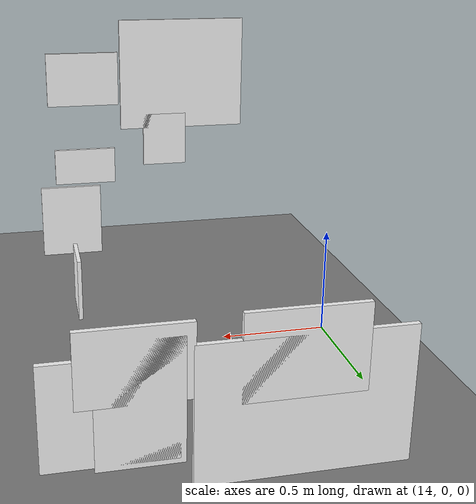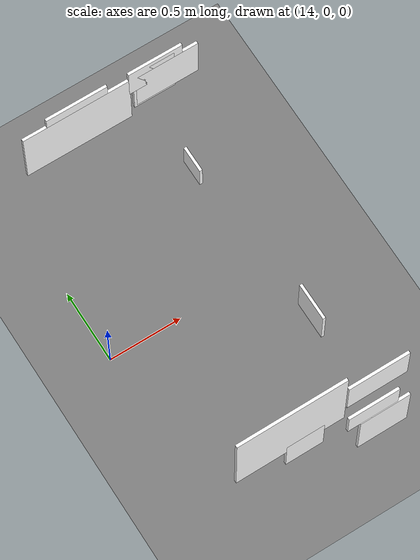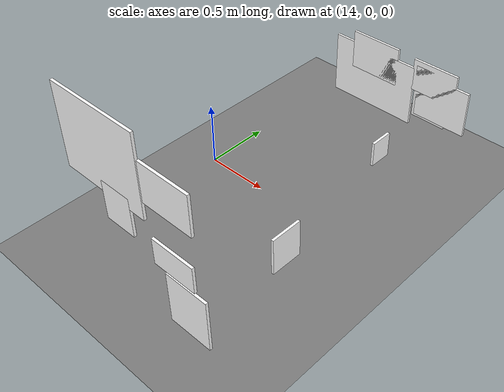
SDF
<sdf version="1.9">
 <world name="tunnel_world">
  <model name="ground_plane">
   <static>true</static>
   <link name="ground">
    <collision name="ground_collision">
     <geometry><plane><normal>0 0 1</normal><size>100 100</size></plane></geometry>
    </collision>
    <visual name="ground_visual">
     <geometry><plane><normal>0 0 1</normal><size>100 100</size></plane></geometry>
     <material>
      <diffuse>0.50 0.50 0.50 1</diffuse>
      <emissive>0.08 0.08 0.08 1</emissive>
      <ambient>0.5 0.5 0.5</ambient>
     </material>
    </visual>
   </link>
  </model>
  <model name="defect_crack_12">
   <static>true</static>
   <pose>14.559 -1.25 0.691 0 0 0</pose>
   <link name="link">
    <visual name="visual">
     <laser_retro>500</laser_retro>
     <geometry><box><size>0.256 0.02 0.307</size></box></geometry>
     <material>
      <ambient>1 1 1 1</ambient>
      <diffuse>1 1 1 1</diffuse>
      <emissive>0.05 0.05 0.05 1</emissive>
      <specular>0.05 0.05 0.05 1</specular>
      <pbr>
       <metal>
        <albedo_map>file:///home/ylf/workspace/inspection_robot/data_gen/textures_data1/crack_20.png</albedo_map>
        <metalness>0.0</metalness>
        <roughness>0.9</roughness>
       </metal>
      </pbr>
     </material>
    </visual>
    <collision name="collision"><geometry><box><size>0.256 0.02 0.307</size></box></geometry></collision>
   </link>
  </model>
  <model name="defect_crack_20">
   <static>true</static>
   <pose>15.11 1.25 0.612 0 0 0</pose>
   <link name="link">
    <visual name="visual">
     <laser_retro>500</laser_retro>
     <geometry><box><size>0.381 0.02 0.265</size></box></geometry>
     <material>
      <ambient>1 1 1 1</ambient>
      <diffuse>1 1 1 1</diffuse>
      <emissive>0.05 0.05 0.05 1</emissive>
      <specular>0.05 0.05 0.05 1</specular>
      <pbr>
       <metal>
        <albedo_map>file:///home/ylf/workspace/inspection_robot/data_gen/textures_data1/crack_6.png</albedo_map>
        <metalness>0.0</metalness>
        <roughness>0.9</roughness>
       </metal>
      </pbr>
     </material>
    </visual>
    <collision name="collision"><geometry><box><size>0.381 0.02 0.265</size></box></geometry></collision>
   </link>
  </model>
  <model name="defect_equip_bracket_loose_04">
   <static>true</static>
   <pose>14.558 1.25 0.599 0 0 0</pose>
   <link name="link">
    <visual name="visual">
     <laser_retro>760</laser_retro>
     <geometry><box><size>0.427 0.02 0.317</size></box></geometry>
     <material>
      <ambient>1 1 1 1</ambient>
      <diffuse>1 1 1 1</diffuse>
      <emissive>0.05 0.05 0.05 1</emissive>
      <specular>0.05 0.05 0.05 1</specular>
      <pbr>
       <metal>
        <albedo_map>file:///home/ylf/workspace/inspection_robot/data_gen/textures_data1/equip_bracket_loose_16.png</albedo_map>
        <metalness>0.0</metalness>
        <roughness>0.9</roughness>
       </metal>
      </pbr>
     </material>
    </visual>
    <collision name="collision"><geometry><box><size>0.427 0.02 0.317</size></box></geometry></collision>
   </link>
  </model>
  <model name="defect_equip_bracket_loose_09">
   <static>true</static>
   <pose>15.039 -1.25 0.545 0 0 0</pose>
   <link name="link">
    <visual name="visual">
     <laser_retro>760</laser_retro>
     <geometry><box><size>0.353 0.02 0.208</size></box></geometry>
     <material>
      <ambient>1 1 1 1</ambient>
      <diffuse>1 1 1 1</diffuse>
      <emissive>0.05 0.05 0.05 1</emissive>
      <specular>0.05 0.05 0.05 1</specular>
      <pbr>
       <metal>
        <albedo_map>file:///home/ylf/workspace/inspection_robot/data_gen/textures_data1/equip_bracket_loose_14.png</albedo_map>
        <metalness>0.0</metalness>
        <roughness>0.9</roughness>
       </metal>
      </pbr>
     </material>
    </visual>
    <collision name="collision"><geometry><box><size>0.353 0.02 0.208</size></box></geometry></collision>
   </link>
  </model>
  <model name="defect_equip_bracket_loose_17">
   <static>true</static>
   <pose>15.19 1.25 0.459 0 0 0</pose>
   <link name="link">
    <visual name="visual">
     <laser_retro>760</laser_retro>
     <geometry><box><size>0.444 0.02 0.373</size></box></geometry>
     <material>
      <ambient>1 1 1 1</ambient>
      <diffuse>1 1 1 1</diffuse>
      <emissive>0.05 0.05 0.05 1</emissive>
      <specular>0.05 0.05 0.05 1</specular>
      <pbr>
       <metal>
        <albedo_map>file:///home/ylf/workspace/inspection_robot/data_gen/textures_data1/equip_bracket_loose_5.png</albedo_map>
        <metalness>0.0</metalness>
        <roughness>0.9</roughness>
       </metal>
      </pbr>
     </material>
    </visual>
    <collision name="collision"><geometry><box><size>0.444 0.02 0.373</size></box></geometry></collision>
   </link>
  </model>
  <model name="defect_equip_bracket_loose_24">
   <static>true</static>
   <pose>15.13 -1.25 0.204 0 0 0</pose>
   <link name="link">
    <visual name="visual">
     <laser_retro>760</laser_retro>
     <geometry><box><size>0.351 0.02 0.434</size></box></geometry>
     <material>
      <ambient>1 1 1 1</ambient>
      <diffuse>1 1 1 1</diffuse>
      <emissive>0.05 0.05 0.05 1</emissive>
      <specular>0.05 0.05 0.05 1</specular>
      <pbr>
       <metal>
        <albedo_map>file:///home/ylf/workspace/inspection_robot/data_gen/textures_data1/equip_bracket_loose_7.png</albedo_map>
        <metalness>0.0</metalness>
        <roughness>0.9</roughness>
       </metal>
      </pbr>
     </material>
    </visual>
    <collision name="collision"><geometry><box><size>0.351 0.02 0.434</size></box></geometry></collision>
   </link>
  </model>
  <model name="defect_equip_intrusion_04">
   <static>true</static>
   <pose>15.161 -0.434 0.165 0 0 0</pose>
   <link name="link">
    <visual name="visual">
     <laser_retro>900</laser_retro>
     <geometry><box><size>0.02 0.257 0.311</size></box></geometry>
     <material>
      <ambient>1 1 1 1</ambient>
      <diffuse>1 1 1 1</diffuse>
      <emissive>0.05 0.05 0.05 1</emissive>
      <specular>0.05 0.05 0.05 1</specular>
      <pbr>
       <metal>
        <albedo_map>file:///home/ylf/workspace/inspection_robot/data_gen/textures_data1/equip_intrusion_7.png</albedo_map>
        <metalness>0.0</metalness>
        <roughness>0.9</roughness>
       </metal>
      </pbr>
     </material>
    </visual>
   </link>
  </model>
  <model name="defect_leakage_11">
   <static>true</static>
   <pose>14.456 -1.25 1.08 0 0 0</pose>
   <link name="link">
    <visual name="visual">
     <laser_retro>300</laser_retro>
     <geometry><box><size>0.731 0.02 0.636</size></box></geometry>
     <material>
      <ambient>1 1 1 1</ambient>
      <diffuse>1 1 1 1</diffuse>
      <emissive>0.05 0.05 0.05 1</emissive>
      <specular>0.05 0.05 0.05 1</specular>
      <pbr>
       <metal>
        <albedo_map>file:///home/ylf/workspace/inspection_robot/data_gen/textures_data1/leakage_3.png</albedo_map>
        <metalness>0.0</metalness>
        <roughness>0.9</roughness>
       </metal>
      </pbr>
     </material>
    </visual>
    <collision name="collision"><geometry><box><size>0.731 0.02 0.636</size></box></geometry></collision>
   </link>
  </model>
  <model name="defect_leakage_13">
   <static>true</static>
   <pose>14.552 1.25 0.409 0 0 0</pose>
   <link name="link">
    <visual name="visual">
     <laser_retro>300</laser_retro>
     <geometry><box><size>0.75 0.02 0.51</size></box></geometry>
     <material>
      <ambient>1 1 1 1</ambient>
      <diffuse>1 1 1 1</diffuse>
      <emissive>0.05 0.05 0.05 1</emissive>
      <specular>0.05 0.05 0.05 1</specular>
      <pbr>
       <metal>
        <albedo_map>file:///home/ylf/workspace/inspection_robot/data_gen/textures_data1/leakage_13.png</albedo_map>
        <metalness>0.0</metalness>
        <roughness>0.9</roughness>
       </metal>
      </pbr>
     </material>
    </visual>
    <collision name="collision"><geometry><box><size>0.75 0.02 0.51</size></box></geometry></collision>
   </link>
  </model>
  <model name="defect_rail_fastener_loose_08">
   <static>true</static>
   <pose>15.044 0.717 0.257 0 0 0</pose>
   <link name="link">
    <visual name="visual">
     <laser_retro>380</laser_retro>
     <geometry><box><size>0.02 0.182 0.204</size></box></geometry>
     <material>
      <ambient>1 1 1 1</ambient>
      <diffuse>1 1 1 1</diffuse>
      <emissive>0.05 0.05 0.05 1</emissive>
      <specular>0.05 0.05 0.05 1</specular>
      <pbr>
       <metal>
        <albedo_map>file:///home/ylf/workspace/inspection_robot/data_gen/textures_data1/rail_fastener_loose_25.png</albedo_map>
        <metalness>0.0</metalness>
        <roughness>0.9</roughness>
       </metal>
      </pbr>
     </material>
    </visual>
   </link>
  </model>
  <model name="defect_spalling_02">
   <static>true</static>
   <pose>15.096 1.25 0.478 0 0 0</pose>
   <link name="link">
    <visual name="visual">
     <laser_retro>700</laser_retro>
     <geometry><box><size>0.293 0.02 0.446</size></box></geometry>
     <material>
      <ambient>1 1 1 1</ambient>
      <diffuse>1 1 1 1</diffuse>
      <emissive>0.05 0.05 0.05 1</emissive>
      <specular>0.05 0.05 0.05 1</specular>
      <pbr>
       <metal>
        <albedo_map>file:///home/ylf/workspace/inspection_robot/data_gen/textures_data1/spalling_23.png</albedo_map>
        <metalness>0.0</metalness>
        <roughness>0.9</roughness>
       </metal>
      </pbr>
     </material>
    </visual>
    <collision name="collision"><geometry><box><size>0.293 0.02 0.446</size></box></geometry></collision>
   </link>
  </model>
  <model name="defect_spalling_14">
   <static>true</static>
   <pose>15.039 -1.25 1.064 0 0 0</pose>
   <link name="link">
    <visual name="visual">
     <laser_retro>700</laser_retro>
     <geometry><box><size>0.411 0.02 0.305</size></box></geometry>
     <material>
      <ambient>1 1 1 1</ambient>
      <diffuse>1 1 1 1</diffuse>
      <emissive>0.05 0.05 0.05 1</emissive>
      <specular>0.05 0.05 0.05 1</specular>
      <pbr>
       <metal>
        <albedo_map>file:///home/ylf/workspace/inspection_robot/data_gen/textures_data1/spalling_20.png</albedo_map>
        <metalness>0.0</metalness>
        <roughness>0.9</roughness>
       </metal>
      </pbr>
     </material>
    </visual>
    <collision name="collision"><geometry><box><size>0.411 0.02 0.305</size></box></geometry></collision>
   </link>
  </model>
 </world>
</sdf>
